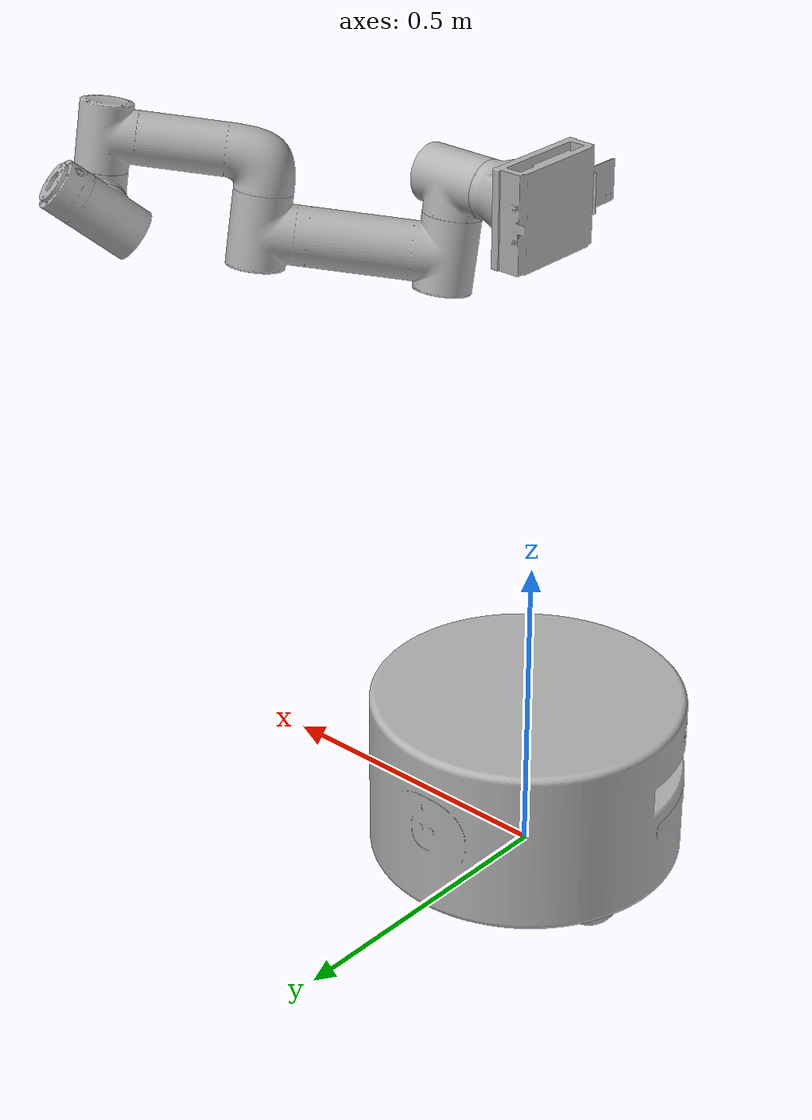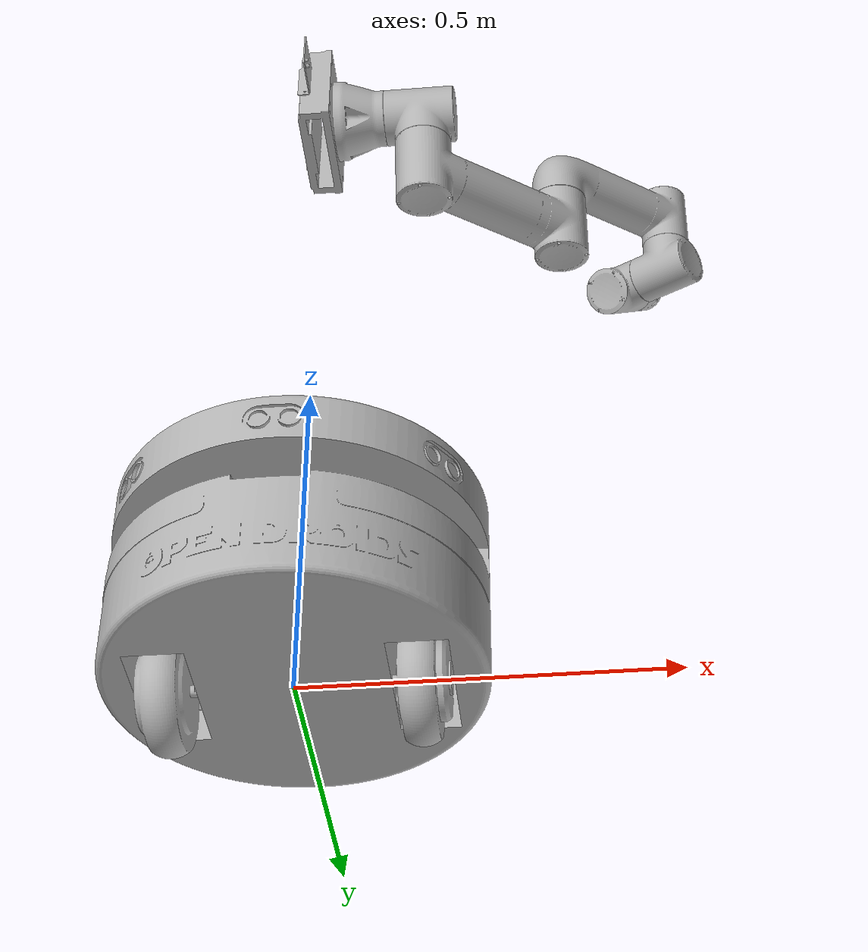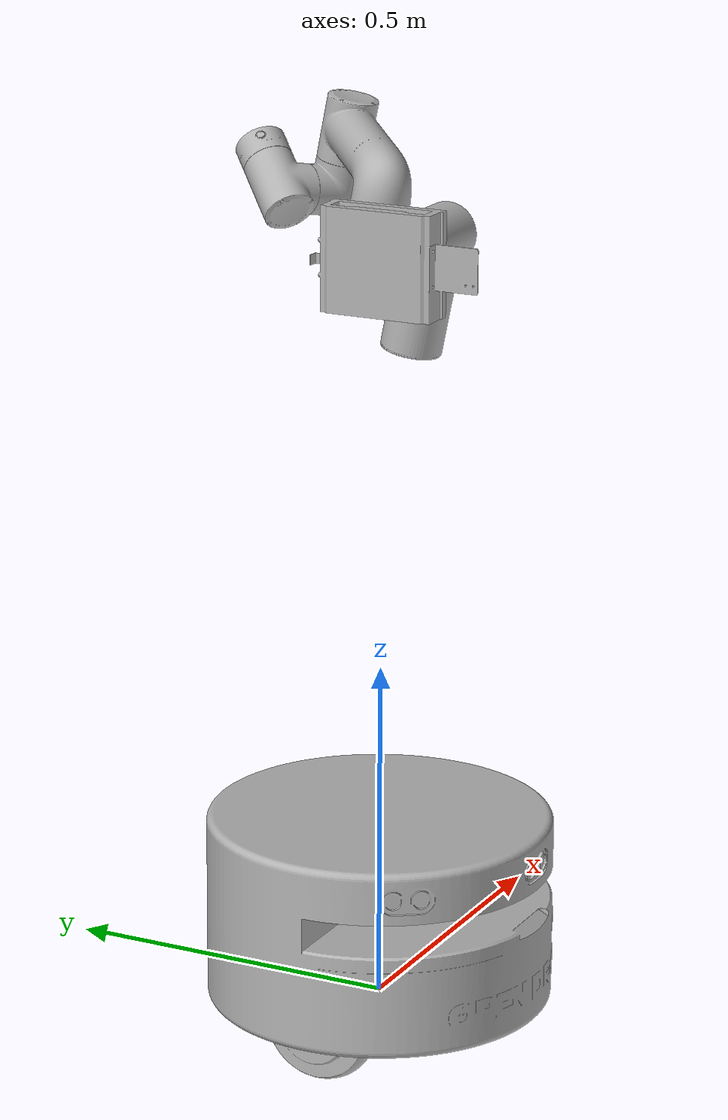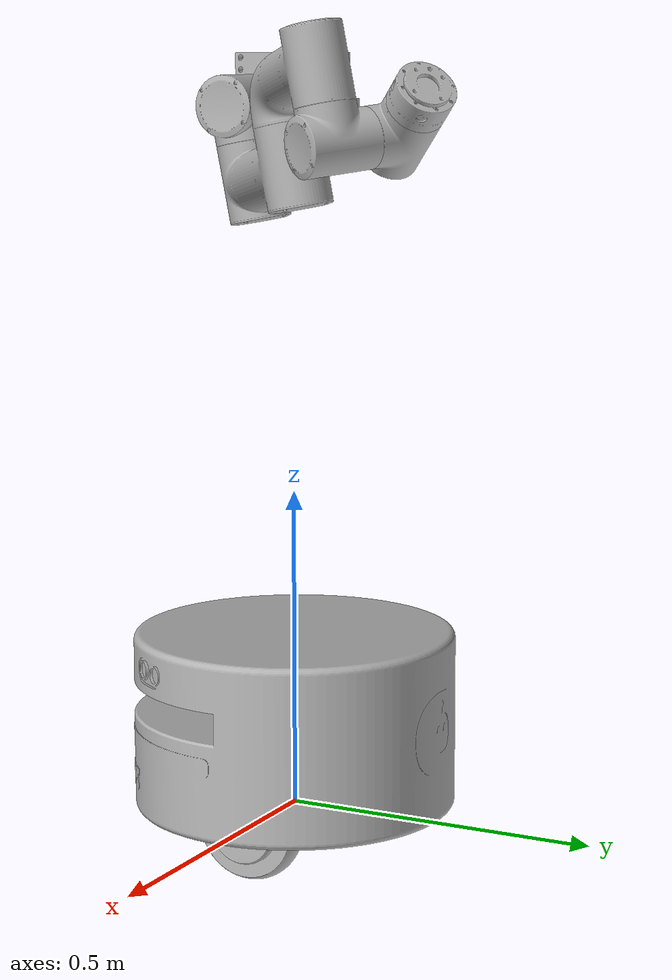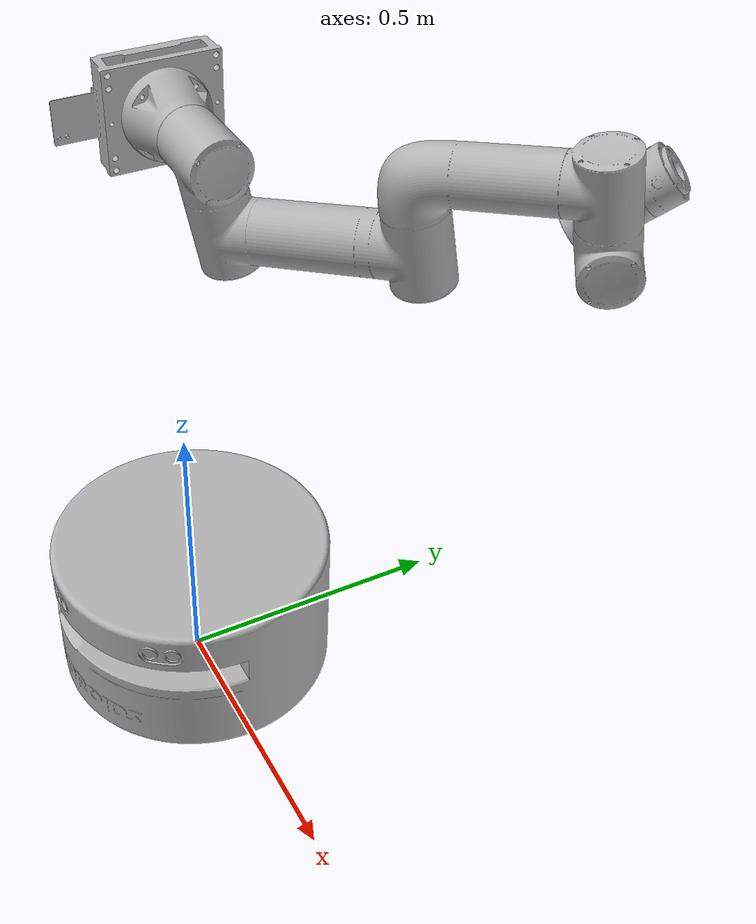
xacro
<?xml version="1.0"?>
<robot xmlns:xacro="http://www.ros.org/wiki/xacro" name="r1d1">
    <xacro:arg name="initial_positions_file" default="initial_positions.yaml" />

    <!-- Import r1d1 urdf file -->
    <xacro:include filename="$(find r1d1_description)/urdf/r1d1.xacro" />

    <!-- Import control_xacro -->
    <xacro:include filename="r1d1.ros2_control.xacro" />

    <xacro:r1d1_ros2_control name="FakeSystem" initial_positions_file="$(arg initial_positions_file)"/>

</robot>

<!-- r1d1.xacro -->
<robot name="r1d1" xmlns:xacro="http://www.ros.org/wiki/xacro">

<xacro:include filename="$(find r1d1_description)/urdf/materials.xacro" />
<xacro:include filename="$(find r1d1_description)/urdf/r1d1.trans" />
<xacro:include filename="$(find r1d1_description)/urdf/r1d1.gazebo" />
<xacro:include filename="$(find r1d1_description)/urdf/inertial_macros.xacro"/>

<link name="base_footprint"/>
<joint name="base_footprint_joint" type="fixed">
  <origin xyz="0 0 0" rpy="0 0 0"/>
  <parent link="base_link"/>
  <child link="base_footprint"/>
</joint>

<link name="base_link">
  <inertial>
    <origin xyz="-0.056878424157251854 0.0008246628795467839 0.818040188158863" rpy="0 0 0"/>
    <mass value="55.61253674388458"/>
    <inertia ixx="13.411535" iyy="13.340011" izz="0.936169" ixy="-0.003638" iyz="-0.013402" ixz="0.58154"/>
  </inertial>
  <visual>
    <origin xyz="0 0 0" rpy="0 0 0"/>
    <geometry>
      <mesh filename="file://$(find r1d1_description)/meshes/base_link.stl" scale="0.001 0.001 0.001"/>
    </geometry>
    <material name="silver"/>
  </visual>
  <collision>
    <origin xyz="0 0 0" rpy="0 0 0"/>
    <geometry>
      <mesh filename="file://$(find r1d1_description)/meshes/base_link.stl" scale="0.001 0.001 0.001"/>
    </geometry>
  </collision>
</link>

<link name="linear_1">
  <inertial>
    <origin xyz="-0.01290125691123972 -0.04641120617963784 0.031169993295189213" rpy="0 0 0"/>
    <mass value="2.084942989538732"/>
    <inertia ixx="0.009769" iyy="0.004571" izz="0.006521" ixy="-2.1e-05" iyz="5e-06" ixz="0.0"/>
  </inertial>
  <visual>
    <origin xyz="-0.005999 -0.0445 -1.067874" rpy="0 0 0"/>
    <geometry>
      <mesh filename="file://$(find r1d1_description)/meshes/linear_1.stl" scale="0.001 0.001 0.001"/>
    </geometry>
    <material name="silver"/>
  </visual>
  <collision>
    <origin xyz="-0.005999 -0.0445 -1.067874" rpy="0 0 0"/>
    <geometry>
      <mesh filename="file://$(find r1d1_description)/meshes/linear_1.stl" scale="0.001 0.001 0.001"/>
    </geometry>
  </collision>
</link>

<link name="left_wheel_1">
  <inertial>
    <origin xyz="-1.8590005809345583e-14 0.08192204264568177 5.286920320535238e-06" rpy="0 0 0"/>
    <mass value="3.081377574152813"/>
    <inertia ixx="0.005627" iyy="0.009529" izz="0.005627" ixy="-0.0" iyz="1e-06" ixz="-0.0"/>
  </inertial>
  <visual>
    <origin xyz="-0.0 -0.105 -0.085" rpy="0 0 0"/>
    <geometry>
      <mesh filename="file://$(find r1d1_description)/meshes/left_wheel_1.stl" scale="0.001 0.001 0.001"/>
    </geometry>
    <material name="silver"/>
  </visual>
  <collision>
    <origin xyz="-0.0 -0.105 -0.085" rpy="0 0 0"/>
    <geometry>
      <mesh filename="file://$(find r1d1_description)/meshes/left_wheel_1.stl" scale="0.001 0.001 0.001"/>
    </geometry>
  </collision>
</link>

<link name="right_wheel_1">
  <inertial>
    <origin xyz="2.564806735050329e-12 -0.0819220426456198 5.286920330679901e-06" rpy="0 0 0"/>
    <mass value="3.0813775741527913"/>
    <inertia ixx="0.005627" iyy="0.009529" izz="0.005627" ixy="0.0" iyz="-1e-06" ixz="-0.0"/>
  </inertial>
  <visual>
    <origin xyz="-0.0 0.105 -0.085" rpy="0 0 0"/>
    <geometry>
      <mesh filename="file://$(find r1d1_description)/meshes/right_wheel_1.stl" scale="0.001 0.001 0.001"/>
    </geometry>
    <material name="silver"/>
  </visual>
  <collision>
    <origin xyz="-0.0 0.105 -0.085" rpy="0 0 0"/>
    <geometry>
      <mesh filename="file://$(find r1d1_description)/meshes/right_wheel_1.stl" scale="0.001 0.001 0.001"/>
    </geometry>
  </collision>
</link>

<link name="c2_1">
  <inertial>
    <origin xyz="-0.014914870734747593 -0.01482504533854448 -0.043955842704183685" rpy="0 0 0"/>
    <mass value="0.4724977724162874"/>
    <inertia ixx="0.00053" iyy="0.000531" izz="0.000293" ixy="-5.7e-05" iyz="-0.000116" ixz="-0.000117"/>
  </inertial>
  <visual>
    <origin xyz="-0.152 -0.0925 -0.093274" rpy="0 0 0"/>
    <geometry>
      <mesh filename="file://$(find r1d1_description)/meshes/c2_1.stl" scale="0.001 0.001 0.001"/>
    </geometry>
    <material name="silver"/>
  </visual>
  <collision>
    <origin xyz="-0.152 -0.0925 -0.093274" rpy="0 0 0"/>
    <geometry>
      <mesh filename="file://$(find r1d1_description)/meshes/c2_1.stl" scale="0.001 0.001 0.001"/>
    </geometry>
  </collision>
</link>

<link name="c3_1">
  <inertial>
    <origin xyz="0.014825194849290874 -0.014914492449113803 -0.043955666652084745" rpy="0 0 0"/>
    <mass value="0.47250060064442484"/>
    <inertia ixx="0.000531" iyy="0.00053" izz="0.000293" ixy="5.7e-05" iyz="-0.000117" ixz="0.000116"/>
  </inertial>
  <visual>
    <origin xyz="-0.152017 0.092317 -0.093274" rpy="0 0 0"/>
    <geometry>
      <mesh filename="file://$(find r1d1_description)/meshes/c3_1.stl" scale="0.001 0.001 0.001"/>
    </geometry>
    <material name="silver"/>
  </visual>
  <collision>
    <origin xyz="-0.152017 0.092317 -0.093274" rpy="0 0 0"/>
    <geometry>
      <mesh filename="file://$(find r1d1_description)/meshes/c3_1.stl" scale="0.001 0.001 0.001"/>
    </geometry>
  </collision>
</link>

<link name="c1_1">
  <inertial>
    <origin xyz="-0.014914870744570902 -0.014825045338495546 -0.043955842704183706" rpy="0 0 0"/>
    <mass value="0.4724977724162867"/>
    <inertia ixx="0.00053" iyy="0.000531" izz="0.000293" ixy="-5.7e-05" iyz="-0.000116" ixz="-0.000117"/>
  </inertial>
  <visual>
    <origin xyz="0.15 -0.094 -0.093274" rpy="0 0 0"/>
    <geometry>
      <mesh filename="file://$(find r1d1_description)/meshes/c1_1.stl" scale="0.001 0.001 0.001"/>
    </geometry>
    <material name="silver"/>
  </visual>
  <collision>
    <origin xyz="0.15 -0.094 -0.093274" rpy="0 0 0"/>
    <geometry>
      <mesh filename="file://$(find r1d1_description)/meshes/c1_1.stl" scale="0.001 0.001 0.001"/>
    </geometry>
  </collision>
</link>

<link name="c4_1">
  <inertial>
    <origin xyz="0.014825117999609755 -0.014914868218551092 -0.04395566665208462" rpy="0 0 0"/>
    <mass value="0.4725006006444246"/>
    <inertia ixx="0.000531" iyy="0.00053" izz="0.000293" ixy="5.7e-05" iyz="-0.000117" ixz="0.000116"/>
  </inertial>
  <visual>
    <origin xyz="0.15 0.094 -0.093274" rpy="0 0 0"/>
    <geometry>
      <mesh filename="file://$(find r1d1_description)/meshes/c4_1.stl" scale="0.001 0.001 0.001"/>
    </geometry>
    <material name="silver"/>
  </visual>
  <collision>
    <origin xyz="0.15 0.094 -0.093274" rpy="0 0 0"/>
    <geometry>
      <mesh filename="file://$(find r1d1_description)/meshes/c4_1.stl" scale="0.001 0.001 0.001"/>
    </geometry>
  </collision>
</link>

<link name="arm_base_link_1">
  <inertial>
    <origin xyz="0.03252738794414457 -0.0006655445175335899 2.7614993784785824e-05" rpy="0 0 0"/>
    <mass value="0.7839314013807541"/>
    <inertia ixx="0.001977" iyy="0.001397" izz="0.001374" ixy="-1.4e-05" iyz="-0.0" ixz="1e-06"/>
  </inertial>
  <visual>
    <origin xyz="-0.018999 0.0005 -1.09902" rpy="0 0 0"/>
    <geometry>
      <mesh filename="file://$(find r1d1_description)/meshes/arm_base_link_1.stl" scale="0.001 0.001 0.001"/>
    </geometry>
    <material name="silver"/>
  </visual>
  <collision>
    <origin xyz="-0.018999 0.0005 -1.09902" rpy="0 0 0"/>
    <geometry>
      <mesh filename="file://$(find r1d1_description)/meshes/arm_base_link_1.stl" scale="0.001 0.001 0.001"/>
    </geometry>
  </collision>
</link>

<link name="shoulder_Link_1">
  <inertial>
    <origin xyz="0.05859551054074014 0.000481073400714422 -0.0023967560246089814" rpy="0 0 0"/>
    <mass value="2.0994946766244813"/>
    <inertia ixx="0.002292" iyy="0.003484" izz="0.003409" ixy="-7e-06" iyz="1.6e-05" ixz="3.6e-05"/>
  </inertial>
  <visual>
    <origin xyz="-0.094999 0.0005 -1.09902" rpy="0 0 0"/>
    <geometry>
      <mesh filename="file://$(find r1d1_description)/meshes/shoulder_Link_1.stl" scale="0.001 0.001 0.001"/>
    </geometry>
    <material name="silver"/>
  </visual>
  <collision>
    <origin xyz="-0.094999 0.0005 -1.09902" rpy="0 0 0"/>
    <geometry>
      <mesh filename="file://$(find r1d1_description)/meshes/shoulder_Link_1.stl" scale="0.001 0.001 0.001"/>
    </geometry>
  </collision>
</link>

<link name="upperarm_Link_1">
  <inertial>
    <origin xyz="0.10589136977445979 0.10193592888806417 -0.04246922277305054" rpy="0 0 0"/>
    <mass value="7.489935480379698"/>
    <inertia ixx="0.048739" iyy="0.063028" izz="0.095941" ixy="-0.043442" iyz="-0.006885" ixz="-0.00872"/>
  </inertial>
  <visual>
    <origin xyz="-0.158999 -0.009342 -1.049998" rpy="0 0 0"/>
    <geometry>
      <mesh filename="file://$(find r1d1_description)/meshes/upperarm_Link_1.stl" scale="0.001 0.001 0.001"/>
    </geometry>
    <material name="silver"/>
  </visual>
  <collision>
    <origin xyz="-0.158999 -0.009342 -1.049998" rpy="0 0 0"/>
    <geometry>
      <mesh filename="file://$(find r1d1_description)/meshes/upperarm_Link_1.stl" scale="0.001 0.001 0.001"/>
    </geometry>
  </collision>
</link>

<link name="forearm_Link_1">
  <inertial>
    <origin xyz="0.0970662368724422 0.07330118151897469 0.06111909037457486" rpy="0 0 0"/>
    <mass value="4.877536779005672"/>
    <inertia ixx="0.02239" iyy="0.029274" izz="0.043704" ixy="-0.019468" iyz="-0.004061" ixz="-0.005043"/>
  </inertial>
  <visual>
    <origin xyz="-0.37078 -0.188921 -1.086052" rpy="0 0 0"/>
    <geometry>
      <mesh filename="file://$(find r1d1_description)/meshes/forearm_Link_1.stl" scale="0.001 0.001 0.001"/>
    </geometry>
    <material name="silver"/>
  </visual>
  <collision>
    <origin xyz="-0.37078 -0.188921 -1.086052" rpy="0 0 0"/>
    <geometry>
      <mesh filename="file://$(find r1d1_description)/meshes/forearm_Link_1.stl" scale="0.001 0.001 0.001"/>
    </geometry>
  </collision>
</link>

<link name="wrist1_Link_1">
  <inertial>
    <origin xyz="-0.0036452259431197787 0.01045991116993944 -0.039943390925281985" rpy="0 0 0"/>
    <mass value="1.5661726706867567"/>
    <inertia ixx="0.00163" iyy="0.00189" izz="0.001988" ixy="0.0003" iyz="-5e-06" ixz="3.8e-05"/>
  </inertial>
  <visual>
    <origin xyz="-0.552363 -0.344177 -1.110082" rpy="0 0 0"/>
    <geometry>
      <mesh filename="file://$(find r1d1_description)/meshes/wrist1_Link_1.stl" scale="0.001 0.001 0.001"/>
    </geometry>
    <material name="silver"/>
  </visual>
  <collision>
    <origin xyz="-0.552363 -0.344177 -1.110082" rpy="0 0 0"/>
    <geometry>
      <mesh filename="file://$(find r1d1_description)/meshes/wrist1_Link_1.stl" scale="0.001 0.001 0.001"/>
    </geometry>
  </collision>
</link>

<link name="wrist2_Link_1">
  <inertial>
    <origin xyz="-0.032375642119249703 0.02486815673009335 0.007183119113793879" rpy="0 0 0"/>
    <mass value="1.566177420925117"/>
    <inertia ixx="0.001888" iyy="0.001793" izz="0.001827" ixy="-0.00014" iyz="-0.000271" ixz="-0.000175"/>
  </inertial>
  <visual>
    <origin xyz="-0.504715 -0.383705 -1.07212" rpy="0 0 0"/>
    <geometry>
      <mesh filename="file://$(find r1d1_description)/meshes/wrist2_Link_1.stl" scale="0.001 0.001 0.001"/>
    </geometry>
    <material name="silver"/>
  </visual>
  <collision>
    <origin xyz="-0.504715 -0.383705 -1.07212" rpy="0 0 0"/>
    <geometry>
      <mesh filename="file://$(find r1d1_description)/meshes/wrist2_Link_1.stl" scale="0.001 0.001 0.001"/>
    </geometry>
  </collision>
</link>

<link name="wrist3_Link_1">
  <inertial>
    <origin xyz="0.009315778938731978 0.012144110908424044 0.012273494623045167" rpy="0 0 0"/>
    <mass value="1.5664115302052826"/>
    <inertia ixx="0.00093" iyy="0.00099" izz="0.000997" ixy="0.000119" iyz="0.000155" ixz="0.000119"/>
  </inertial>
  <visual>
    <origin xyz="-0.494322 -0.443048 -1.112671" rpy="0 0 0"/>
    <geometry>
      <mesh filename="file://$(find r1d1_description)/meshes/wrist3_Link_1.stl" scale="0.001 0.001 0.001"/>
    </geometry>
    <material name="silver"/>
  </visual>
  <collision>
    <origin xyz="-0.494322 -0.443048 -1.112671" rpy="0 0 0"/>
    <geometry>
      <mesh filename="file://$(find r1d1_description)/meshes/wrist3_Link_1.stl" scale="0.001 0.001 0.001"/>
    </geometry>
  </collision>
</link>

<joint name="slider" type="prismatic">
  <origin xyz="0.005999 0.0445 1.067874" rpy="0 0 0"/>
  <parent link="base_link"/>
  <child link="linear_1"/>
  <axis xyz="0.0 -0.0 -1.0"/>
  <limit upper="0.5" lower="-0.7" effort="100" velocity="100"/>
</joint>

<joint name="left_wheel_joint" type="continuous">
  <origin xyz="0.0 0.105 0.085" rpy="0 0 0"/>
  <parent link="base_link"/>
  <child link="left_wheel_1"/>
  <axis xyz="-0.0 1.0 0.0"/>
</joint>

<joint name="right_wheel_joint" type="continuous">
  <origin xyz="0.0 -0.105 0.085" rpy="0 0 0"/>
  <parent link="base_link"/>
  <child link="right_wheel_1"/>
  <axis xyz="0.0 1.0 -0.0"/>
</joint>

<joint name="castor_2" type="continuous">
  <origin xyz="0.152 0.0925 0.093274" rpy="0 0 0"/>
  <parent link="base_link"/>
  <child link="c2_1"/>
  <axis xyz="0.0 0.0 1.0"/>
</joint>

<joint name="castor_3" type="continuous">
  <origin xyz="0.152017 -0.092317 0.093274" rpy="0 0 0"/>
  <parent link="base_link"/>
  <child link="c3_1"/>
  <axis xyz="0.0 0.0 1.0"/>
</joint>

<joint name="castor_1" type="continuous">
  <origin xyz="-0.15 0.094 0.093274" rpy="0 0 0"/>
  <parent link="base_link"/>
  <child link="c1_1"/>
  <axis xyz="0.0 0.0 1.0"/>
</joint>

<joint name="castor_4" type="continuous">
  <origin xyz="-0.15 -0.094 0.093274" rpy="0 0 0"/>
  <parent link="base_link"/>
  <child link="c4_1"/>
  <axis xyz="0.0 0.0 1.0"/>
</joint>

<joint name="arm_fixed_joint" type="fixed">
  <origin xyz="0.013 -0.045 0.031146" rpy="0 0 0"/>
  <parent link="linear_1"/>
  <child link="arm_base_link_1"/>
</joint>

<joint name="shoulder_joint" type="revolute">
  <origin xyz="0.076 0.0 0.0" rpy="0 0 0"/>
  <parent link="arm_base_link_1"/>
  <child link="shoulder_Link_1"/>
  <axis xyz="1.0 -0.0 0.0"/>
  <limit upper="5.410521" lower="-0.698132" effort="100" velocity="100"/>
</joint>

<joint name="upperarm_joint" type="revolute">
  <origin xyz="0.064 0.009842 -0.049022" rpy="0 0 0"/>
  <parent link="shoulder_Link_1"/>
  <child link="upperarm_Link_1"/>
  <axis xyz="-0.0 0.196838 -0.980436"/>
  <limit upper="5.602507" lower="-0.506145" effort="100" velocity="100"/>
</joint>

<joint name="forearm_joint" type="revolute">
  <origin xyz="0.211781 0.179579 0.036054" rpy="0 0 0"/>
  <parent link="upperarm_Link_1"/>
  <child link="forearm_Link_1"/>
  <axis xyz="0.0 -0.196838 0.980436"/>
  <limit upper="3.403392" lower="-2.181662" effort="100" velocity="100"/>
</joint>

<joint name="wrist_joint_1" type="revolute">
  <origin xyz="0.181583 0.155256 0.02403" rpy="0 0 0"/>
  <parent link="forearm_Link_1"/>
  <child link="wrist1_Link_1"/>
  <axis xyz="-0.0 0.196838 -0.980436"/>
  <limit upper="5.585054" lower="-0.523599" effort="100" velocity="100"/>
</joint>

<joint name="wrist_joint_2" type="revolute">
  <origin xyz="-0.047648 0.039528 -0.037962" rpy="0 0 0"/>
  <parent link="wrist1_Link_1"/>
  <child link="wrist2_Link_1"/>
  <axis xyz="-0.835937 0.538089 0.10803"/>
  <limit upper="4.625123" lower="-1.48353" effort="100" velocity="100"/>
</joint>

<joint name="wrist_joint_3" type="continuous">
  <origin xyz="-0.010393 0.059343 0.040551" rpy="0 0 0"/>
  <parent link="wrist2_Link_1"/>
  <child link="wrist3_Link_1"/>
  <axis xyz="0.477624 0.616294 0.626144"/>
</joint>

</robot>

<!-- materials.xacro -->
<robot name="r1d1" xmlns:xacro="http://www.ros.org/wiki/xacro" >

<material name="silver">
  <color rgba="0.700 0.700 0.700 1.000"/>
</material>

</robot>

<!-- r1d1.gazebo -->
<robot name="r1d1" xmlns:xacro="http://www.ros.org/wiki/xacro" >

<xacro:property name="body_color" value="Gazebo/Silver" />

<gazebo>
  <plugin name="control" filename="libgazebo_ros_control.so"/>
</gazebo>
<gazebo reference="base_link">
  <material>${body_color}</material>
  <mu1>0.2</mu1>
  <mu2>0.2</mu2>
  <self_collide>true</self_collide>
  <gravity>true</gravity>
</gazebo>

<gazebo reference="linear_1">
  <material>${body_color}</material>
  <mu1>0.2</mu1>
  <mu2>0.2</mu2>
  <self_collide>true</self_collide>
</gazebo>

<gazebo reference="left_wheel_1">
  <material>${body_color}</material>
  <mu1>100</mu1>
  <mu2>100</mu2>
  <self_collide>true</self_collide>
</gazebo>

<gazebo reference="right_wheel_1">
  <material>${body_color}</material>
  <mu1>100</mu1>
  <mu2>100</mu2>
  <self_collide>true</self_collide>
</gazebo>

<gazebo reference="c2_1">
  <material>${body_color}</material>
  <mu1>0.1</mu1>
  <mu2>0.1</mu2>
  <self_collide>true</self_collide>
</gazebo>

<gazebo reference="c3_1">
  <material>${body_color}</material>
  <mu1>0.1</mu1>
  <mu2>0.1</mu2>
  <self_collide>true</self_collide>
</gazebo>

<gazebo reference="c1_1">
  <material>${body_color}</material>
  <mu1>0.1</mu1>
  <mu2>0.1</mu2>
  <self_collide>true</self_collide>
</gazebo>

<gazebo reference="c4_1">
  <material>${body_color}</material>
  <mu1>0.1</mu1>
  <mu2>0.1</mu2>
  <self_collide>true</self_collide>
</gazebo>

<gazebo reference="arm_base_link_1">
  <material>${body_color}</material>
  <mu1>0.2</mu1>
  <mu2>0.2</mu2>
  <self_collide>true</self_collide>
</gazebo>

<gazebo reference="shoulder_Link_1">
  <material>${body_color}</material>
  <mu1>0.2</mu1>
  <mu2>0.2</mu2>
  <self_collide>true</self_collide>
</gazebo>

<gazebo reference="upperarm_Link_1">
  <material>${body_color}</material>
  <mu1>0.2</mu1>
  <mu2>0.2</mu2>
  <self_collide>true</self_collide>
</gazebo>

<gazebo reference="forearm_Link_1">
  <material>${body_color}</material>
  <mu1>0.2</mu1>
  <mu2>0.2</mu2>
  <self_collide>true</self_collide>
</gazebo>

<gazebo reference="wrist1_Link_1">
  <material>${body_color}</material>
  <mu1>0.2</mu1>
  <mu2>0.2</mu2>
  <self_collide>true</self_collide>
</gazebo>

<gazebo reference="wrist2_Link_1">
  <material>${body_color}</material>
  <mu1>0.2</mu1>
  <mu2>0.2</mu2>
  <self_collide>true</self_collide>
</gazebo>

<gazebo reference="wrist3_Link_1">
  <material>${body_color}</material>
  <mu1>0.2</mu1>
  <mu2>0.2</mu2>
  <self_collide>true</self_collide>
</gazebo>

</robot>
